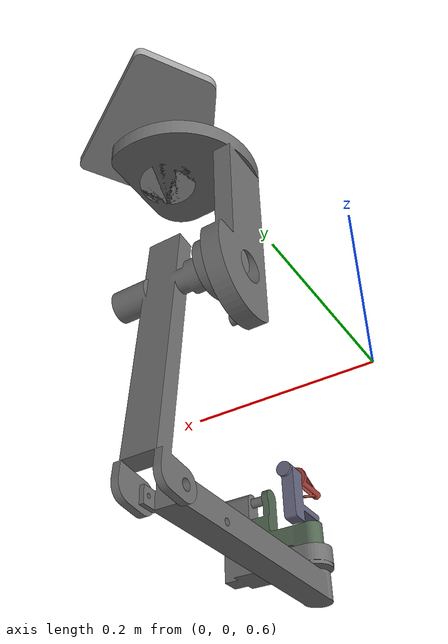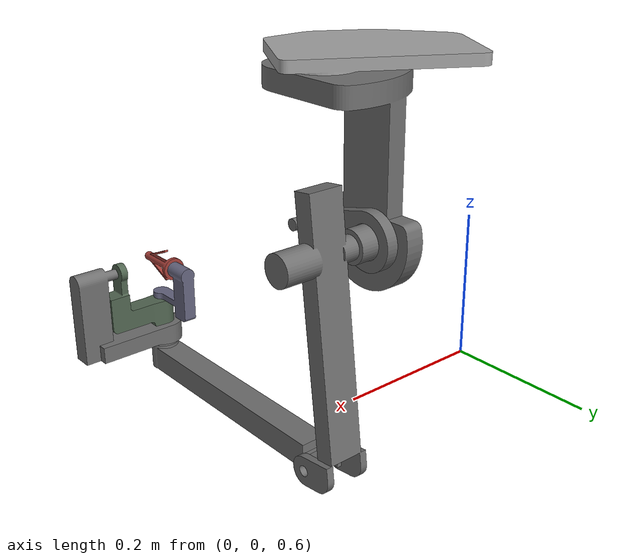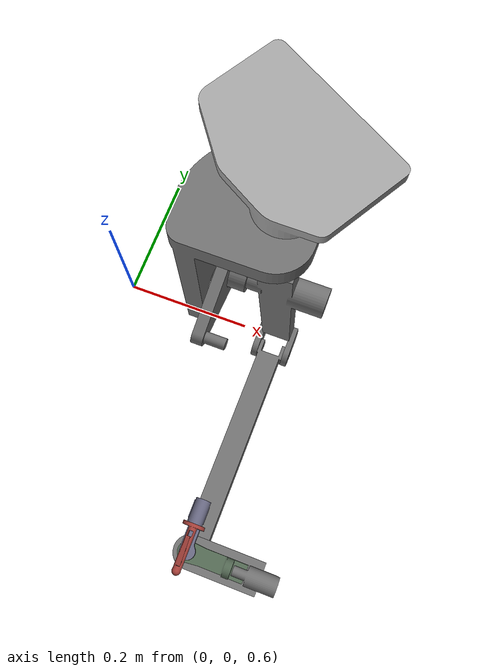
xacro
<?xml version="1.0" ?>
<robot name="master" xmlns:xacro="http://www.ros.org/wiki/xacro">

  <!-- Macros -->
  <xacro:include filename="$(find irk_model)/model/mtm.urdf.xacro"/>

  <link name="world"/>
  <xacro:mtm
      prefix="right_"
      parent_link="world"
      xyz="0.25 0.0 1.0" rpy="0.0 0.0 0.0"/>

</robot>

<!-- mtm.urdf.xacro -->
<robot name="mtm" xmlns:xacro="http://www.ros.org/wiki/xacro">
  <!-- Colors -->
  <xacro:include filename="$(find irk_model)/model/common.urdf.xacro"/>

  <!-- Macro for the da Vinci Master Console -->
  <xacro:macro name="master_console" params="prefix parent_link xyz rpy">
    <!-- Left MTM -->
    <joint name="${prefix}base_fixed_joint" type="fixed">
      <parent link="${parent_link}"/>
      <child link="${prefix}master_base_link"/>
      <origin rpy="${rpy}" xyz="${xyz}"/>
    </joint>

    <link name="${prefix}master_base_link"/>

    <xacro:left_mtm prefix="${prefix}" parent_link="${prefix}master_base_link"/>
    <xacro:right_mtm prefix="${prefix}" parent_link="${prefix}master_base_link"/>
  </xacro:macro>

  <!-- Macros for left and right MTMs -->
  <xacro:macro name="left_mtm" params="prefix parent_link">
    <xacro:mtm
      prefix="${prefix}left_"
      parent_link="${parent_link}"
      xyz="-0.25 0.0 1.0" rpy="0.0 0.0 ${30/180*PI}"/>
  </xacro:macro>
  <xacro:macro name="right_mtm" params="prefix parent_link">
    <xacro:mtm
      prefix="${prefix}right_"
      parent_link="${parent_link}"
      xyz="0.25 0.0 1.0" rpy="0.0 0.0 0.0"/>
  </xacro:macro>

  <!-- Macro for da Vinci Master Tool Manipulator (MTM) -->
  <xacro:macro name="mtm" params="prefix parent_link xyz rpy">

    <joint name="${prefix}fixed_joint" type="fixed">
      <parent link="${parent_link}"/>
      <child link="${prefix}top_panel"/>
      <origin rpy="${rpy}" xyz="${xyz}"/>
    </joint>

    <link name="${prefix}top_panel">
      <visual>
        <geometry>
          <mesh filename="package://irk_model/meshes/mtm/Top Panel.dae"/>
        </geometry>
      </visual>
      <collision>
        <geometry>
          <mesh filename="package://irk_model/meshes/mtm/Top Panel.STL"/>
        </geometry>
      </collision>
      <inertial>
        <origin xyz="0 0 0" rpy="0 0 0"/>
        <mass value=".9"/>
        <inertia ixx="9.0" ixy="0.0" ixz="0.0"
                           iyy="9.0" iyz="0.0"
                                     izz="9.0"/>
      </inertial>
    </link>

    <joint name="${prefix}outer_yaw_joint" type="revolute">
      <parent link="${prefix}top_panel"/>
      <child link="${prefix}outer_yaw_link"/>
      <origin rpy="0 0 ${PI/2}" xyz="0 0 0"/>
      <axis xyz="0 0 1"/>
      <!--rotates about z axis-->
      <!--limit effort and velocity picked arbitrarily check-->
      <limit effort="50.0" lower="${-75/180*PI}" upper="${PI/4}" velocity="2"/>
      <joint_properties damping="1.0" friction="0.0"/>
    </joint>

    <link name="${prefix}outer_yaw_link">
      <visual>
        <geometry>
          <mesh filename="package://irk_model/meshes/mtm/OutPitch_Shoulder.dae"/>
        </geometry>
      </visual>
      <collision>
        <geometry>
          <mesh filename="package://irk_model/meshes/mtm/OutPitch_Shoulder.STL"/>
        </geometry>
      </collision>
      <inertial>
        <mass value="1"/>
        <inertia ixx="10.0" ixy="0.0" ixz="0.0" iyy="10.0" iyz="0.0" izz="10.0"/>
      </inertial>
    </link>

    <link name="${prefix}back_parallel_link">
      <visual>
        <geometry>
          <mesh filename="package://irk_model/meshes/mtm/ArmParallel.dae"/>
        </geometry>
      </visual>
      <collision>
        <geometry>
          <mesh filename="package://irk_model/meshes/mtm/ArmParallel.STL"/>
        </geometry>
      </collision>
      <inertial>
        <mass value=".9"/>
        <inertia ixx="9.0" ixy="0.0" ixz="0.0" iyy="9.0" iyz="0.0" izz="9.0"/>
      </inertial>
    </link>

    <link name="${prefix}top_parallel_link">
      <visual>
        <geometry>
          <mesh filename="package://irk_model/meshes/mtm/ArmParallel1.dae"/>
        </geometry>
      </visual>
      <collision>
        <geometry>
          <mesh filename="package://irk_model/meshes/mtm/ArmParallel1.STL"/>
        </geometry>
      </collision>
      <inertial>
        <mass value=".5"/>
        <inertia ixx="5.0" ixy="0.0" ixz="0.0" iyy="5.0" iyz="0.0" izz="5.0"/>
      </inertial>
    </link>

    <joint name="${prefix}shoulder_pitch_joint" type="revolute">
      <parent link="${prefix}outer_yaw_link"/>
      <child link="${prefix}back_parallel_link"/>  <!-- xyz= 0 0 -.19037-->
      <origin rpy="${-PI/2} ${-PI/2} 0" xyz="0 0 -0.19037"/>
      <axis xyz="0 0 1"/>
      <!--rotates about  x axis-->
      <!--limit effort and velocity picked arbitrarily check-->
      <limit effort="100.0" lower="${-PI/4}" upper="${PI/4}" velocity="10"/>
      <joint_properties damping="1.0" friction="0.0"/>
    </joint>

    <joint name="${prefix}shoulder_pitch_parallel_joint" type="revolute">
      <parent link="${prefix}outer_yaw_link"/>
      <child link="${prefix}top_parallel_link"/>
      <origin rpy="${-PI/2} ${PI} 0" xyz="0 .065 -.19037"/>
      <axis xyz="0 0 1"/>
      <!--rotates about  x axis-->
      <!--limit effort and velocity picked arbitrarily check-->
      <limit effort="100.0" lower="${-PI/2}" upper="${PI/2}" velocity="10"/>
      <joint_properties damping="1.0" friction="0.0"/>
      <mimic joint="${prefix}shoulder_pitch_joint" multiplier="1"/>
    </joint>

    <joint name="${prefix}elbow_pitch_joint" type="revolute">
      <parent link="${prefix}back_parallel_link"/>
      <child link="${prefix}bottom_parallel_link"/>  <!-- xyz= -->
      <origin rpy="0 0 ${PI/2}" xyz="-.2794 0 0"/>
      <axis xyz="0 0 1"/>
      <!--rotates about x axis-->
      <!--limit effort and velocity picked arbitrarily check-->
      <limit effort="100.0" lower="${-PI/4}" upper="${PI/4}" velocity="10"/>
      <joint_properties damping="1.0" friction="0.0"/>
    </joint>

    <joint name="${prefix}wrist_platform_joint" type="revolute">
      <parent link="${prefix}bottom_parallel_link"/>
      <child link="${prefix}wrist_platform_link"/>  <!-- -.348 & -.02746 defined from MTMDaVinci paper and  added -.01 from original to align, -0.02746 defined from CAD file-->
      <origin rpy="${PI/2} 0 0" xyz="-0.3645 -0.156 0.0"/>
      <axis xyz="0 0 1"/>
      <!--rotates about z axis-->
      <!--limit effort and velocity picked arbitrarily check-->
      <limit effort="100.0" lower="${-60/180*PI}" upper="${245/180*PI}" velocity="10"/>
      <joint_properties damping="1.0" friction="0.0"/>
    </joint>

    <link name="${prefix}wrist_platform_link">
      <visual>
        <geometry>
          <mesh filename="package://irk_model/meshes/mtm/WristPlatform.dae"/>
        </geometry>
      </visual>
      <collision>
        <geometry>
          <mesh filename="package://irk_model/meshes/mtm/WristPlatform.STL"/>
        </geometry>
      </collision>
      <inertial>
        <mass value="0.4"/>
        <inertia ixx="0.1" ixy="0.0" ixz="0.0"
                           iyy="0.1" iyz="0.0"
                                     izz="0.1"/>
      </inertial>
    </link>

    <link name="${prefix}bottom_parallel_link">
      <visual>
        <geometry>
          <mesh filename="package://irk_model/meshes/mtm/BottomArm.dae"/>
        </geometry>
      </visual>
      <collision>
        <geometry>
          <mesh filename="package://irk_model/meshes/mtm/BottomArm.STL"/>
        </geometry>
      </collision>
      <inertial>
        <mass value="0.8"/>
        <inertia ixx="0.1" ixy="0.0" ixz="0.0"
                           iyy="0.1" iyz="0.0"
                                     izz="0.1"/>
      </inertial>
    </link>

    <joint name="${prefix}wrist_pitch_joint" type="revolute">
      <parent link="${prefix}wrist_platform_link"/>
      <child link="${prefix}wrist_pitch_link"/>   <!--rpy="1.57 0 3.14159 " the num .072 & .123 are defined from CAD file -->
      <origin rpy="${-PI/2} 0 0" xyz="0 0 0"/>
      <axis xyz="0 0 1"/>
      <!--rotates about x axis-->
      <!--limit effort and velocity picked arbitrarily check-->
      <limit effort="100.0" lower="${-PI/2}" upper="${PI}" velocity="10"/>
      <joint_properties damping="1.0" friction="0.0"/>
    </joint>

    <link name="${prefix}wrist_pitch_link">
      <visual>        <!-- defined from CAD file (increased in the y dir by .005-->
        <geometry>
          <mesh filename="package://irk_model/meshes/mtm/WristPitch.dae"/>
        </geometry>
      </visual>
      <collision>        <!-- defined from CAD file (increased in the y dir by .005-->
        <geometry>
          <mesh filename="package://irk_model/meshes/mtm/WristPitch.STL"/>
        </geometry>
      </collision>
      <inertial>
        <mass value="0.2"/>
        <inertia ixx="0.1" ixy="0.0" ixz="0.0"
                           iyy="0.1" iyz="0.0"
                                     izz="0.1"/>
      </inertial>
    </link>

    <joint name="${prefix}wrist_yaw_joint" type="revolute">
      <parent link="${prefix}wrist_pitch_link"/>
      <child link="${prefix}wrist_yaw_link"/>    <!--  defined from CAD file-->
      <origin rpy="${PI/2} ${-PI/2} 0" xyz="0 0 0"/>
      <axis xyz="0 0 1"/>
      <!--rotates about z axis-->
      <!--limit effort and velocity picked arbitrarily check-->
      <limit effort="100.0"  lower="${-PI/4}" upper="${PI/4}" velocity="10"/>
      <joint_properties damping="1.0" friction="0.0"/>
    </joint>

    <link name="${prefix}wrist_yaw_link">
      <visual>
        <geometry>
          <mesh filename="package://irk_model/meshes/mtm/WristYaw.dae"/>
        </geometry>
      </visual>
      <collision>
        <geometry>
          <mesh filename="package://irk_model/meshes/mtm/WristYaw.STL"/>
        </geometry>
      </collision>
      <inertial>
        <mass value="0.2"/>
        <inertia ixx="0.1" ixy="0.0" ixz="0.0"
                           iyy="0.1" iyz="0.0"
                                     izz="0.1"/>
      </inertial>
    </link>

    <joint name="${prefix}wrist_roll_joint" type="revolute">
      <parent link="${prefix}wrist_yaw_link"/>
      <child link="${prefix}wrist_roll_link"/>  <!-- -.039 & .055 defined from CAD file-->
      <origin rpy="${-PI/2} 0 0" xyz="0 -.039 0"/>
      <axis xyz="0 0 1"/>
      <!--rotates about y axis-->
      <!--limit effort and velocity picked arbitrarily check-->
      <limit effort="100.0" lower="${-1.5*PI}" upper="${1.5*PI}" velocity="10"/>
      <joint_properties damping="1.0" friction="0.0"/>
    </joint>

    <link name="${prefix}wrist_roll_link">
      <visual>
        <geometry>
          <mesh filename="package://irk_model/meshes/mtm/WristRoll.dae"/>
        </geometry>
      </visual>
      <collision>
        <geometry>
          <mesh filename="package://irk_model/meshes/mtm/WristRoll.STL"/>
        </geometry>
      </collision>
      <inertial>
        <mass value="0.1"/>
        <inertia ixx="0.1" ixy="0.0" ixz="0.0"
                           iyy="0.1" iyz="0.0"
                                     izz="0.1"/>
      </inertial>
    </link>
  </xacro:macro>
</robot>

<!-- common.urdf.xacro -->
<robot include-once="true" xmlns:xacro="http://ros.org/wiki/xacro">

  <!-- Mathematical Constants -->
  <xacro:property name="PI" value="3.1415926535897931" />

  <!-- Colors -->
  <xacro:property name="DaVinciWhite"     value="1.0 1.0 1.0 1"/>
  <xacro:property name="DaVinciLightGray" value="0.8 0.8 0.8 1"/>
  <xacro:property name="DaVinciMedGray"   value="0.6 0.6 0.6 1"/>
  <xacro:property name="DaVinciDarkGray"  value="0.4 0.4 0.4 1"/>
  <xacro:property name="DaVinciRed"       value="0.5 0.4 0.4 1"/>
  <xacro:property name="DaVinciGreen"     value="0.4 0.5 0.4 1"/>
  <xacro:property name="DaVinciBlue"      value="0.4 0.4 0.5 1"/>

  <material name="DaVinciWhite">    <color rgba="${DaVinciWhite}"/></material>
  <material name="DaVinciLightGray"><color rgba="${DaVinciLightGray}"/></material>
  <material name="DaVinciMedGray">  <color rgba="${DaVinciMedGray}"/></material>
  <material name="DaVinciDarkGray"> <color rgba="${DaVinciDarkGray}"/></material>
  <material name="DaVinciRed">      <color rgba="${DaVinciRed}"/></material>
  <material name="DaVinciGreen">    <color rgba="${DaVinciGreen}"/></material>
  <material name="DaVinciBlue">     <color rgba="${DaVinciBlue}"/></material>
</robot>
